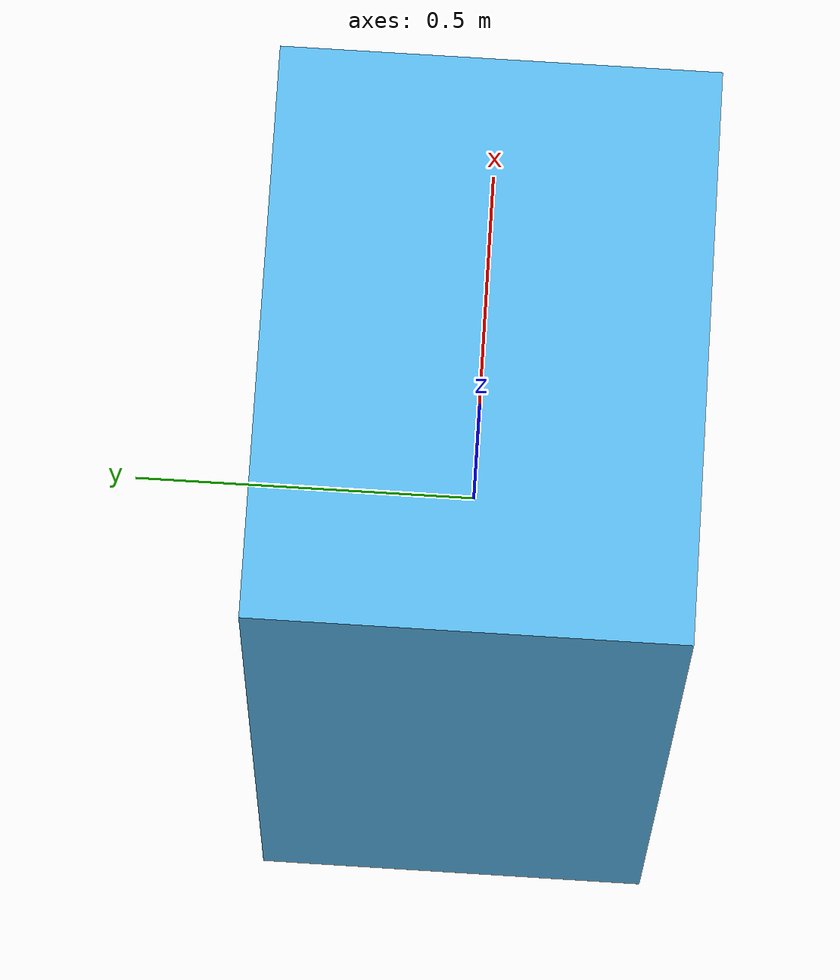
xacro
<?xml version="1.0"?>
<robot name="flat_plate_camera_bracket" xmlns:xacro="http://ros.org/wiki/xacro">
  <link name="base_link"/>
  <link name="flat_plate_camera_bracket_body">
    <visual><geometry><mesh filename="package://flat_plate_camera_bracket_description/meshes/visual/flat_plate_camera_bracket.stl" scale="1 1 1"/></geometry></visual>
    <collision><geometry><mesh filename="package://flat_plate_camera_bracket_description/meshes/collision/flat_plate_camera_bracket.stl" scale="1 1 1"/></geometry></collision>
    <inertial><mass value="5.0"/><origin xyz="0 0 0"/><inertia ixx="0.2" ixy="0" ixz="0" iyy="0.2" iyz="0" izz="0.2"/></inertial>
  </link>
  <joint name="flat_plate_camera_bracket_base_joint" type="fixed"><parent link="base_link"/><child link="flat_plate_camera_bracket_body"/></joint>
  <link name="camera_mount_link"/>
  <joint name="flat_plate_camera_bracket_camera_mount_joint" type="fixed"><parent link="flat_plate_camera_bracket_body"/><child link="camera_mount_link"/><origin xyz="0 0 0.8" rpy="0 0 0"/></joint>
</robot>
